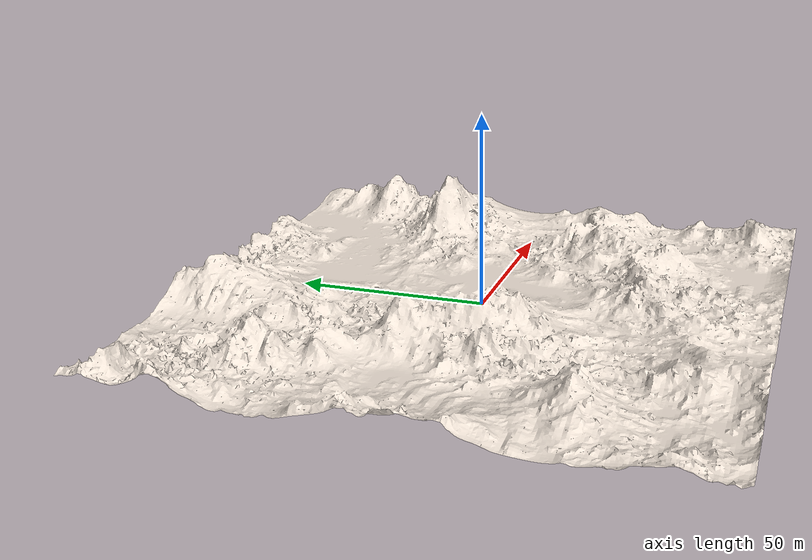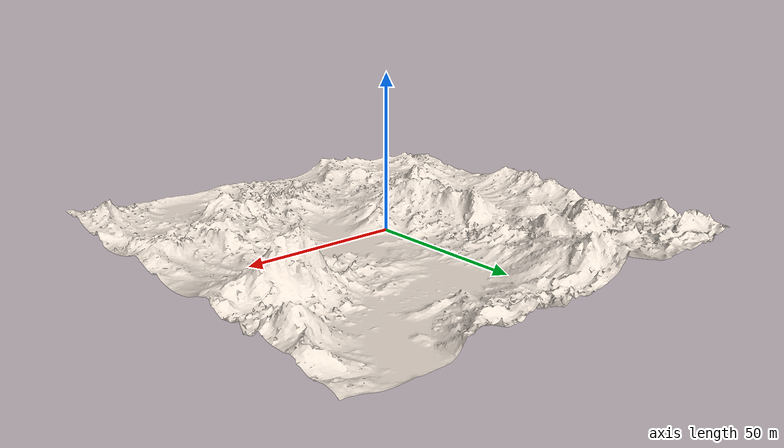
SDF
<?xml version="1.0" ?>
<sdf version="1.8">
  <model name="death_valley_terrain">
    <static>true</static>
    <link name="link">
      <collision name="collision">
        <geometry>
          <mesh>
            <uri>model://death_valley_terrain/meshes/death_valley_collision.stl</uri>
          </mesh>
        </geometry>
        <surface>
          <friction>
            <ode>
              <mu>1.2</mu>
              <mu2>1.2</mu2>
            </ode>
          </friction>
        </surface>
      </collision>
      <visual name="visual">
        <geometry>
          <mesh>
            <uri>model://death_valley_terrain/meshes/death_valley_visual.obj</uri>
          </mesh>
        </geometry>
        <material>
          <ambient>0.9 0.85 0.8 1.0</ambient>
          <diffuse>0.95 0.9 0.85 1.0</diffuse>
          <specular>0.1 0.1 0.1 1.0</specular>
        </material>
      </visual>
    </link>
  </model>
</sdf>
